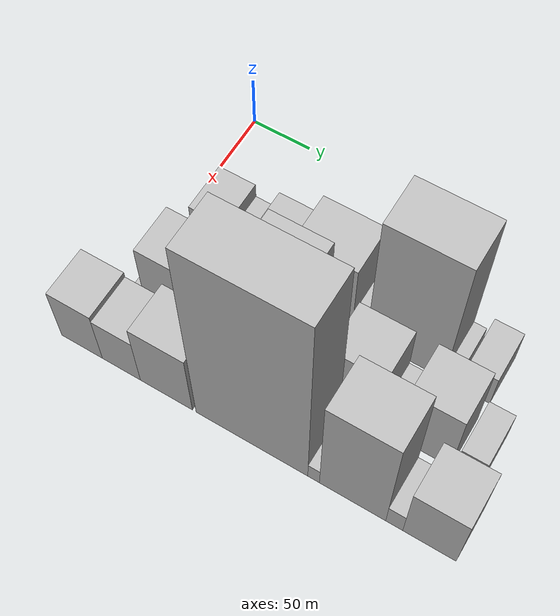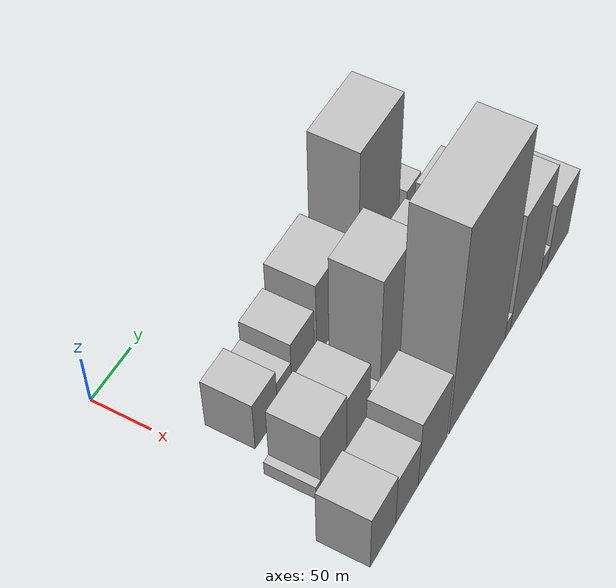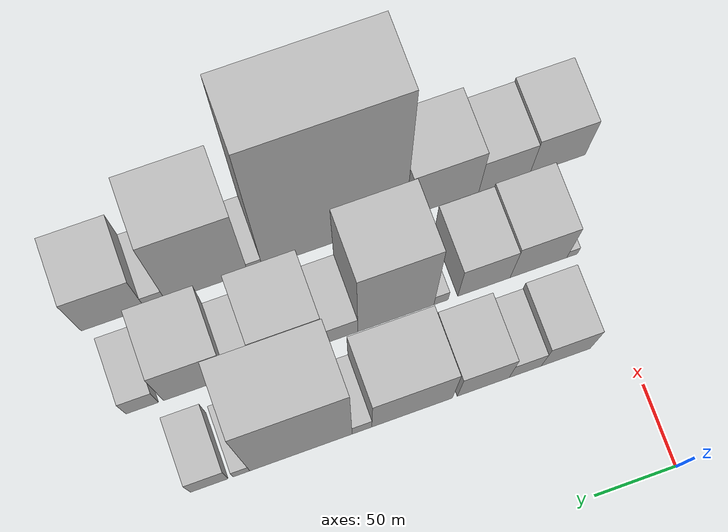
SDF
<sdf version="1.6">
 <world name="default">
  <model name="building_16">
   <static>1</static>
   <pose>100.0000 36.3263 0 0.000000 0.000000 0.000000</pose>
   <link name="link">
    <pose>0 0 27.00 0 0 0</pose>
    <collision name="collision"><geometry><box><size>40.0000 30.5769 54.0000</size></box></geometry></collision>
    <visual name="visual">
     <cast_shadows>0</cast_shadows>
     <geometry><box><size>40.0000 30.5769 54.0000</size></box></geometry>
     <material>
      <script>
       <uri>model://HANNAS_wall/materials/scripts</uri>
       <uri>model://HANNAS_wall/materials/textures</uri>
       <name>vrc/HANNAS_wall</name>
      </script>
     </material>
    </visual>
   </link>
  </model>
  <model name="building_17">
   <static>1</static>
   <pose>100.0000 61.5209 0 0.000000 0.000000 0.000000</pose>
   <link name="link">
    <pose>0 0 19.50 0 0 0</pose>
    <collision name="collision"><geometry><box><size>40.0000 19.8122 39.0000</size></box></geometry></collision>
    <visual name="visual">
     <cast_shadows>0</cast_shadows>
     <geometry><box><size>40.0000 19.8122 39.0000</size></box></geometry>
     <material>
      <script>
       <uri>model://HANNAS_wall/materials/scripts</uri>
       <uri>model://HANNAS_wall/materials/textures</uri>
       <name>vrc/HANNAS_wall</name>
      </script>
     </material>
    </visual>
   </link>
  </model>
  <model name="building_18">
   <static>1</static>
   <pose>100.0000 87.4213 0 0.000000 0.000000 0.000000</pose>
   <link name="link">
    <pose>0 0 30.00 0 0 0</pose>
    <collision name="collision"><geometry><box><size>40.0000 31.9886 60.0000</size></box></geometry></collision>
    <visual name="visual">
     <cast_shadows>0</cast_shadows>
     <geometry><box><size>40.0000 31.9886 60.0000</size></box></geometry>
     <material>
      <script>
       <uri>model://HANNAS_wall/materials/scripts</uri>
       <uri>model://HANNAS_wall/materials/textures</uri>
       <name>vrc/HANNAS_wall</name>
      </script>
     </material>
    </visual>
   </link>
  </model>
  <model name="building_19">
   <static>1</static>
   <pose>100.0000 131.0985 0 0.000000 0.000000 0.000000</pose>
   <link name="link">
    <pose>0 0 42.00 0 0 0</pose>
    <collision name="collision"><geometry><box><size>40.0000 49.3658 84.0000</size></box></geometry></collision>
    <visual name="visual">
     <cast_shadows>0</cast_shadows>
     <geometry><box><size>40.0000 49.3658 84.0000</size></box></geometry>
     <material>
      <script>
       <uri>model://HANNAS_wall/materials/scripts</uri>
       <uri>model://HANNAS_wall/materials/textures</uri>
       <name>vrc/HANNAS_wall</name>
      </script>
     </material>
    </visual>
   </link>
  </model>
  <model name="building_20">
   <static>1</static>
   <pose>100.0000 161.7609 0 0.000000 0.000000 0.000000</pose>
   <link name="link">
    <pose>0 0 13.50 0 0 0</pose>
    <collision name="collision"><geometry><box><size>40.0000 11.9590 27.0000</size></box></geometry></collision>
    <visual name="visual">
     <cast_shadows>0</cast_shadows>
     <geometry><box><size>40.0000 11.9590 27.0000</size></box></geometry>
     <material>
      <script>
       <uri>model://HANNAS_wall/materials/scripts</uri>
       <uri>model://HANNAS_wall/materials/textures</uri>
       <name>vrc/HANNAS_wall</name>
      </script>
     </material>
    </visual>
   </link>
  </model>
  <model name="building_21">
   <static>1</static>
   <pose>100.0000 198.7092 0 0.000000 0.000000 0.000000</pose>
   <link name="link">
    <pose>0 0 78.00 0 0 0</pose>
    <collision name="collision"><geometry><box><size>40.0000 61.9377 156.0000</size></box></geometry></collision>
    <visual name="visual">
     <cast_shadows>0</cast_shadows>
     <geometry><box><size>40.0000 61.9377 156.0000</size></box></geometry>
     <material>
      <script>
       <uri>model://HANNAS_wall/materials/scripts</uri>
       <uri>model://HANNAS_wall/materials/textures</uri>
       <name>vrc/HANNAS_wall</name>
      </script>
     </material>
    </visual>
   </link>
  </model>
  <model name="building_22">
   <static>1</static>
   <pose>100.0000 234.6944 0 0.000000 0.000000 0.000000</pose>
   <link name="link">
    <pose>0 0 10.50 0 0 0</pose>
    <collision name="collision"><geometry><box><size>40.0000 10.0326 21.0000</size></box></geometry></collision>
    <visual name="visual">
     <cast_shadows>0</cast_shadows>
     <geometry><box><size>40.0000 10.0326 21.0000</size></box></geometry>
     <material>
      <script>
       <uri>model://HANNAS_wall/materials/scripts</uri>
       <uri>model://HANNAS_wall/materials/textures</uri>
       <name>vrc/HANNAS_wall</name>
      </script>
     </material>
    </visual>
   </link>
  </model>
  <model name="building_23">
   <static>1</static>
   <pose>100.0000 253.9902 0 0.000000 0.000000 0.000000</pose>
   <link name="link">
    <pose>0 0 19.50 0 0 0</pose>
    <collision name="collision"><geometry><box><size>40.0000 22.5590 39.0000</size></box></geometry></collision>
    <visual name="visual">
     <cast_shadows>0</cast_shadows>
     <geometry><box><size>40.0000 22.5590 39.0000</size></box></geometry>
     <material>
      <script>
       <uri>model://HANNAS_wall/materials/scripts</uri>
       <uri>model://HANNAS_wall/materials/textures</uri>
       <name>vrc/HANNAS_wall</name>
      </script>
     </material>
    </visual>
   </link>
  </model>
  <model name="building_53">
   <static>1</static>
   <pose>155.0000 10.7663 0 0.000000 0.000000 0.000000</pose>
   <link name="link">
    <pose>0 0 7.50 0 0 0</pose>
    <collision name="collision"><geometry><box><size>40.0000 6.7381 15.0000</size></box></geometry></collision>
    <visual name="visual">
     <cast_shadows>0</cast_shadows>
     <geometry><box><size>40.0000 6.7381 15.0000</size></box></geometry>
     <material>
      <script>
       <uri>model://HANNAS_wall/materials/scripts</uri>
       <uri>model://HANNAS_wall/materials/textures</uri>
       <name>vrc/HANNAS_wall</name>
      </script>
     </material>
    </visual>
   </link>
  </model>
  <model name="building_54">
   <static>1</static>
   <pose>155.0000 31.9293 0 0.000000 0.000000 0.000000</pose>
   <link name="link">
    <pose>0 0 34.50 0 0 0</pose>
    <collision name="collision"><geometry><box><size>40.0000 35.5880 69.0000</size></box></geometry></collision>
    <visual name="visual">
     <cast_shadows>0</cast_shadows>
     <geometry><box><size>40.0000 35.5880 69.0000</size></box></geometry>
     <material>
      <script>
       <uri>model://HANNAS_wall/materials/scripts</uri>
       <uri>model://HANNAS_wall/materials/textures</uri>
       <name>vrc/HANNAS_wall</name>
      </script>
     </material>
    </visual>
   </link>
  </model>
  <model name="building_55">
   <static>1</static>
   <pose>155.0000 66.1047 0 0.000000 0.000000 0.000000</pose>
   <link name="link">
    <pose>0 0 31.50 0 0 0</pose>
    <collision name="collision"><geometry><box><size>40.0000 32.7628 63.0000</size></box></geometry></collision>
    <visual name="visual">
     <cast_shadows>0</cast_shadows>
     <geometry><box><size>40.0000 32.7628 63.0000</size></box></geometry>
     <material>
      <script>
       <uri>model://HANNAS_wall/materials/scripts</uri>
       <uri>model://HANNAS_wall/materials/textures</uri>
       <name>vrc/HANNAS_wall</name>
      </script>
     </material>
    </visual>
   </link>
  </model>
  <model name="building_56">
   <static>1</static>
   <pose>155.0000 92.9295 0 0.000000 0.000000 0.000000</pose>
   <link name="link">
    <pose>0 0 10.50 0 0 0</pose>
    <collision name="collision"><geometry><box><size>40.0000 8.8868 21.0000</size></box></geometry></collision>
    <visual name="visual">
     <cast_shadows>0</cast_shadows>
     <geometry><box><size>40.0000 8.8868 21.0000</size></box></geometry>
     <material>
      <script>
       <uri>model://HANNAS_wall/materials/scripts</uri>
       <uri>model://HANNAS_wall/materials/textures</uri>
       <name>vrc/HANNAS_wall</name>
      </script>
     </material>
    </visual>
   </link>
  </model>
  <model name="building_57">
   <static>1</static>
   <pose>155.0000 120.9628 0 0.000000 0.000000 0.000000</pose>
   <link name="link">
    <pose>0 0 67.50 0 0 0</pose>
    <collision name="collision"><geometry><box><size>40.0000 47.1796 135.0000</size></box></geometry></collision>
    <visual name="visual">
     <cast_shadows>0</cast_shadows>
     <geometry><box><size>40.0000 47.1796 135.0000</size></box></geometry>
     <material>
      <script>
       <uri>model://HANNAS_wall/materials/scripts</uri>
       <uri>model://HANNAS_wall/materials/textures</uri>
       <name>vrc/HANNAS_wall</name>
      </script>
     </material>
    </visual>
   </link>
  </model>
  <model name="building_58">
   <static>1</static>
   <pose>155.0000 155.0983 0 0.000000 0.000000 0.000000</pose>
   <link name="link">
    <pose>0 0 18.00 0 0 0</pose>
    <collision name="collision"><geometry><box><size>40.0000 21.0915 36.0000</size></box></geometry></collision>
    <visual name="visual">
     <cast_shadows>0</cast_shadows>
     <geometry><box><size>40.0000 21.0915 36.0000</size></box></geometry>
     <material>
      <script>
       <uri>model://HANNAS_wall/materials/scripts</uri>
       <uri>model://HANNAS_wall/materials/textures</uri>
       <name>vrc/HANNAS_wall</name>
      </script>
     </material>
    </visual>
   </link>
  </model>
  <model name="building_59">
   <static>1</static>
   <pose>155.0000 186.5194 0 0.000000 0.000000 0.000000</pose>
   <link name="link">
    <pose>0 0 39.00 0 0 0</pose>
    <collision name="collision"><geometry><box><size>40.0000 41.7508 78.0000</size></box></geometry></collision>
    <visual name="visual">
     <cast_shadows>0</cast_shadows>
     <geometry><box><size>40.0000 41.7508 78.0000</size></box></geometry>
     <material>
      <script>
       <uri>model://HANNAS_wall/materials/scripts</uri>
       <uri>model://HANNAS_wall/materials/textures</uri>
       <name>vrc/HANNAS_wall</name>
      </script>
     </material>
    </visual>
   </link>
  </model>
  <model name="building_60">
   <static>1</static>
   <pose>155.0000 215.4919 0 0.000000 0.000000 0.000000</pose>
   <link name="link">
    <pose>0 0 15.00 0 0 0</pose>
    <collision name="collision"><geometry><box><size>40.0000 16.1943 30.0000</size></box></geometry></collision>
    <visual name="visual">
     <cast_shadows>0</cast_shadows>
     <geometry><box><size>40.0000 16.1943 30.0000</size></box></geometry>
     <material>
      <script>
       <uri>model://HANNAS_wall/materials/scripts</uri>
       <uri>model://HANNAS_wall/materials/textures</uri>
       <name>vrc/HANNAS_wall</name>
      </script>
     </material>
    </visual>
   </link>
  </model>
  <model name="building_61">
   <static>1</static>
   <pose>155.0000 243.4715 0 0.000000 0.000000 0.000000</pose>
   <link name="link">
    <pose>0 0 39.00 0 0 0</pose>
    <collision name="collision"><geometry><box><size>40.0000 39.7648 78.0000</size></box></geometry></collision>
    <visual name="visual">
     <cast_shadows>0</cast_shadows>
     <geometry><box><size>40.0000 39.7648 78.0000</size></box></geometry>
     <material>
      <script>
       <uri>model://HANNAS_wall/materials/scripts</uri>
       <uri>model://HANNAS_wall/materials/textures</uri>
       <name>vrc/HANNAS_wall</name>
      </script>
     </material>
    </visual>
   </link>
  </model>
  <model name="building_62">
   <static>1</static>
   <pose>155.0000 276.2190 0 0.000000 0.000000 0.000000</pose>
   <link name="link">
    <pose>0 0 18.00 0 0 0</pose>
    <collision name="collision"><geometry><box><size>40.0000 19.7302 36.0000</size></box></geometry></collision>
    <visual name="visual">
     <cast_shadows>0</cast_shadows>
     <geometry><box><size>40.0000 19.7302 36.0000</size></box></geometry>
     <material>
      <script>
       <uri>model://HANNAS_wall/materials/scripts</uri>
       <uri>model://HANNAS_wall/materials/textures</uri>
       <name>vrc/HANNAS_wall</name>
      </script>
     </material>
    </visual>
   </link>
  </model>
  <model name="building_90">
   <static>1</static>
   <pose>210.0000 -1.5593 0 0.000000 0.000000 0.000000</pose>
   <link name="link">
    <pose>0 0 31.50 0 0 0</pose>
    <collision name="collision"><geometry><box><size>40.0000 35.4453 63.0000</size></box></geometry></collision>
    <visual name="visual">
     <cast_shadows>0</cast_shadows>
     <geometry><box><size>40.0000 35.4453 63.0000</size></box></geometry>
     <material>
      <script>
       <uri>model://HANNAS_wall/materials/scripts</uri>
       <uri>model://HANNAS_wall/materials/textures</uri>
       <name>vrc/HANNAS_wall</name>
      </script>
     </material>
    </visual>
   </link>
  </model>
  <model name="building_91">
   <static>1</static>
   <pose>210.0000 32.3518 0 0.000000 0.000000 0.000000</pose>
   <link name="link">
    <pose>0 0 28.50 0 0 0</pose>
    <collision name="collision"><geometry><box><size>40.0000 32.3770 57.0000</size></box></geometry></collision>
    <visual name="visual">
     <cast_shadows>0</cast_shadows>
     <geometry><box><size>40.0000 32.3770 57.0000</size></box></geometry>
     <material>
      <script>
       <uri>model://HANNAS_wall/materials/scripts</uri>
       <uri>model://HANNAS_wall/materials/textures</uri>
       <name>vrc/HANNAS_wall</name>
      </script>
     </material>
    </visual>
   </link>
  </model>
  <model name="building_92">
   <static>1</static>
   <pose>210.0000 70.2276 0 0.000000 0.000000 0.000000</pose>
   <link name="link">
    <pose>0 0 39.00 0 0 0</pose>
    <collision name="collision"><geometry><box><size>40.0000 43.3746 78.0000</size></box></geometry></collision>
    <visual name="visual">
     <cast_shadows>0</cast_shadows>
     <geometry><box><size>40.0000 43.3746 78.0000</size></box></geometry>
     <material>
      <script>
       <uri>model://HANNAS_wall/materials/scripts</uri>
       <uri>model://HANNAS_wall/materials/textures</uri>
       <name>vrc/HANNAS_wall</name>
      </script>
     </material>
    </visual>
   </link>
  </model>
  <model name="building_93">
   <static>1</static>
   <pose>210.0000 139.5521 0 0.000000 0.000000 0.000000</pose>
   <link name="link">
    <pose>0 0 112.50 0 0 0</pose>
    <collision name="collision"><geometry><box><size>40.0000 89.2744 225.0000</size></box></geometry></collision>
    <visual name="visual">
     <cast_shadows>0</cast_shadows>
     <geometry><box><size>40.0000 89.2744 225.0000</size></box></geometry>
     <material>
      <script>
       <uri>model://HANNAS_wall/materials/scripts</uri>
       <uri>model://HANNAS_wall/materials/textures</uri>
       <name>vrc/HANNAS_wall</name>
      </script>
     </material>
    </visual>
   </link>
  </model>
  <model name="building_94">
   <static>1</static>
   <pose>210.0000 188.7017 0 0.000000 0.000000 0.000000</pose>
   <link name="link">
    <pose>0 0 10.50 0 0 0</pose>
    <collision name="collision"><geometry><box><size>40.0000 9.0247 21.0000</size></box></geometry></collision>
    <visual name="visual">
     <cast_shadows>0</cast_shadows>
     <geometry><box><size>40.0000 9.0247 21.0000</size></box></geometry>
     <material>
      <script>
       <uri>model://HANNAS_wall/materials/scripts</uri>
       <uri>model://HANNAS_wall/materials/textures</uri>
       <name>vrc/HANNAS_wall</name>
      </script>
     </material>
    </visual>
   </link>
  </model>
  <model name="building_95">
   <static>1</static>
   <pose>210.0000 218.4940 0 0.000000 0.000000 0.000000</pose>
   <link name="link">
    <pose>0 0 64.50 0 0 0</pose>
    <collision name="collision"><geometry><box><size>40.0000 50.5601 129.0000</size></box></geometry></collision>
    <visual name="visual">
     <cast_shadows>0</cast_shadows>
     <geometry><box><size>40.0000 50.5601 129.0000</size></box></geometry>
     <material>
      <script>
       <uri>model://HANNAS_wall/materials/scripts</uri>
       <uri>model://HANNAS_wall/materials/textures</uri>
       <name>vrc/HANNAS_wall</name>
      </script>
     </material>
    </visual>
   </link>
  </model>
  <model name="building_96">
   <static>1</static>
   <pose>210.0000 250.1206 0 0.000000 0.000000 0.000000</pose>
   <link name="link">
    <pose>0 0 13.50 0 0 0</pose>
    <collision name="collision"><geometry><box><size>40.0000 12.6931 27.0000</size></box></geometry></collision>
    <visual name="visual">
     <cast_shadows>0</cast_shadows>
     <geometry><box><size>40.0000 12.6931 27.0000</size></box></geometry>
     <material>
      <script>
       <uri>model://HANNAS_wall/materials/scripts</uri>
       <uri>model://HANNAS_wall/materials/textures</uri>
       <name>vrc/HANNAS_wall</name>
      </script>
     </material>
    </visual>
   </link>
  </model>
  <model name="building_97">
   <static>1</static>
   <pose>210.0000 276.0924 0 0.000000 0.000000 0.000000</pose>
   <link name="link">
    <pose>0 0 36.00 0 0 0</pose>
    <collision name="collision"><geometry><box><size>40.0000 39.2506 72.0000</size></box></geometry></collision>
    <visual name="visual">
     <cast_shadows>0</cast_shadows>
     <geometry><box><size>40.0000 39.2506 72.0000</size></box></geometry>
     <material>
      <script>
       <uri>model://HANNAS_wall/materials/scripts</uri>
       <uri>model://HANNAS_wall/materials/textures</uri>
       <name>vrc/HANNAS_wall</name>
      </script>
     </material>
    </visual>
   </link>
  </model>
 </world>
</sdf>
